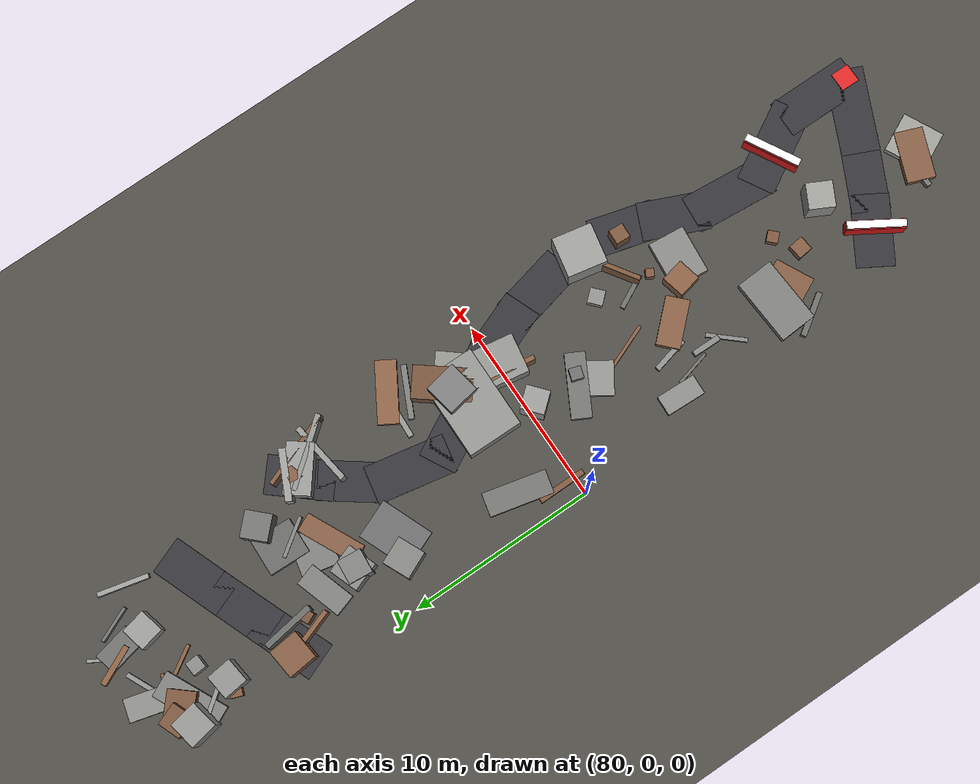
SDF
<sdf version="1.6">
 <world name="navitas_arena">
  <model name="ground_plane">
   <static>true</static>
   <link name="link">
    <collision name="collision">
     <geometry><plane><normal>0 0 1</normal><size>400 400</size></plane></geometry>
     <surface><friction><ode><mu>0.800</mu><mu2>0.800</mu2></ode></friction></surface>
    </collision>
    <visual name="visual">
     <cast_shadows>false</cast_shadows>
     <geometry><plane><normal>0 0 1</normal><size>400 400</size></plane></geometry>
     <material><ambient>0.300 0.290 0.270 1</ambient><diffuse>0.300 0.290 0.270 1</diffuse></material>
    </visual>
   </link>
  </model>
  <model name="road_zor_1_0">
   <static>true</static>
   <pose>88.355 -22.266 0.040 0 0 2.717</pose>
   <link name="link">
    <collision name="col"><geometry><box><size>4.465 2.000 0.020</size></box></geometry></collision>
    <visual name="vis">
     <geometry><box><size>4.465 2.000 0.020</size></box></geometry>
     <material><ambient>0.20 0.20 0.22 1</ambient><diffuse>0.20 0.20 0.22 1</diffuse></material>
    </visual>
   </link>
  </model>
  <model name="road_zor_1_1">
   <static>true</static>
   <pose>85.354 -20.856 0.040 0 0 2.686</pose>
   <link name="link">
    <collision name="col"><geometry><box><size>3.968 2.000 0.020</size></box></geometry></collision>
    <visual name="vis">
     <geometry><box><size>3.968 2.000 0.020</size></box></geometry>
     <material><ambient>0.20 0.20 0.22 1</ambient><diffuse>0.20 0.20 0.22 1</diffuse></material>
    </visual>
   </link>
  </model>
  <model name="road_zor_1_2">
   <static>true</static>
   <pose>82.742 -19.443 0.040 0 0 2.602</pose>
   <link name="link">
    <collision name="col"><geometry><box><size>3.777 2.000 0.020</size></box></geometry></collision>
    <visual name="vis">
     <geometry><box><size>3.777 2.000 0.020</size></box></geometry>
     <material><ambient>0.20 0.20 0.22 1</ambient><diffuse>0.20 0.20 0.22 1</diffuse></material>
    </visual>
   </link>
  </model>
  <model name="road_zor_1_18">
   <static>true</static>
   <pose>82.278 15.986 0.040 0 0 0.380</pose>
   <link name="link">
    <collision name="col"><geometry><box><size>3.693 2.000 0.020</size></box></geometry></collision>
    <visual name="vis">
     <geometry><box><size>3.693 2.000 0.020</size></box></geometry>
     <material><ambient>0.20 0.20 0.22 1</ambient><diffuse>0.20 0.20 0.22 1</diffuse></material>
    </visual>
   </link>
  </model>
  <model name="road_zor_1_19">
   <static>true</static>
   <pose>84.845 17.002 0.040 0 0 0.374</pose>
   <link name="link">
    <collision name="col"><geometry><box><size>3.627 2.000 0.020</size></box></geometry></collision>
    <visual name="vis">
     <geometry><box><size>3.627 2.000 0.020</size></box></geometry>
     <material><ambient>0.20 0.20 0.22 1</ambient><diffuse>0.20 0.20 0.22 1</diffuse></material>
    </visual>
   </link>
  </model>
  <model name="road_zor_1_20">
   <static>true</static>
   <pose>87.457 18.014 0.040 0 0 0.365</pose>
   <link name="link">
    <collision name="col"><geometry><box><size>3.776 2.000 0.020</size></box></geometry></collision>
    <visual name="vis">
     <geometry><box><size>3.776 2.000 0.020</size></box></geometry>
     <material><ambient>0.20 0.20 0.22 1</ambient><diffuse>0.20 0.20 0.22 1</diffuse></material>
    </visual>
   </link>
  </model>
  <model name="road_zor_2_0">
   <static>true</static>
   <pose>89.984 -21.250 0.040 0 0 1.568</pose>
   <link name="link">
    <collision name="col"><geometry><box><size>4.400 2.000 0.020</size></box></geometry></collision>
    <visual name="vis">
     <geometry><box><size>4.400 2.000 0.020</size></box></geometry>
     <material><ambient>0.20 0.20 0.22 1</ambient><diffuse>0.20 0.20 0.22 1</diffuse></material>
    </visual>
   </link>
  </model>
  <model name="road_zor_2_1">
   <static>true</static>
   <pose>89.083 -17.912 0.040 0 0 2.089</pose>
   <link name="link">
    <collision name="col"><geometry><box><size>4.556 2.000 0.020</size></box></geometry></collision>
    <visual name="vis">
     <geometry><box><size>4.556 2.000 0.020</size></box></geometry>
     <material><ambient>0.20 0.20 0.22 1</ambient><diffuse>0.20 0.20 0.22 1</diffuse></material>
    </visual>
   </link>
  </model>
  <model name="road_zor_2_2">
   <static>true</static>
   <pose>88.335 -14.588 0.040 0 0 1.480</pose>
   <link name="link">
    <collision name="col"><geometry><box><size>4.387 2.000 0.020</size></box></geometry></collision>
    <visual name="vis">
     <geometry><box><size>4.387 2.000 0.020</size></box></geometry>
     <material><ambient>0.20 0.20 0.22 1</ambient><diffuse>0.20 0.20 0.22 1</diffuse></material>
    </visual>
   </link>
  </model>
  <model name="road_zor_2_3">
   <static>true</static>
   <pose>89.023 -11.639 0.040 0 0 1.159</pose>
   <link name="link">
    <collision name="col"><geometry><box><size>3.547 2.000 0.020</size></box></geometry></collision>
    <visual name="vis">
     <geometry><box><size>3.547 2.000 0.020</size></box></geometry>
     <material><ambient>0.20 0.20 0.22 1</ambient><diffuse>0.20 0.20 0.22 1</diffuse></material>
    </visual>
   </link>
  </model>
  <model name="road_zor_2_4">
   <static>true</static>
   <pose>89.887 -9.213 0.040 0 0 1.302</pose>
   <link name="link">
    <collision name="col"><geometry><box><size>3.416 2.000 0.020</size></box></geometry></collision>
    <visual name="vis">
     <geometry><box><size>3.416 2.000 0.020</size></box></geometry>
     <material><ambient>0.20 0.20 0.22 1</ambient><diffuse>0.20 0.20 0.22 1</diffuse></material>
    </visual>
   </link>
  </model>
  <model name="road_zor_2_6">
   <static>true</static>
   <pose>89.777 -3.800 0.040 0 0 1.798</pose>
   <link name="link">
    <collision name="col"><geometry><box><size>3.774 2.000 0.020</size></box></geometry></collision>
    <visual name="vis">
     <geometry><box><size>3.774 2.000 0.020</size></box></geometry>
     <material><ambient>0.20 0.20 0.22 1</ambient><diffuse>0.20 0.20 0.22 1</diffuse></material>
    </visual>
   </link>
  </model>
  <model name="road_zor_2_7">
   <static>true</static>
   <pose>88.952 -1.117 0.040 0 0 1.943</pose>
   <link name="link">
    <collision name="col"><geometry><box><size>3.656 2.000 0.020</size></box></geometry></collision>
    <visual name="vis">
     <geometry><box><size>3.656 2.000 0.020</size></box></geometry>
     <material><ambient>0.20 0.20 0.22 1</ambient><diffuse>0.20 0.20 0.22 1</diffuse></material>
    </visual>
   </link>
  </model>
  <model name="road_zor_2_8">
   <static>true</static>
   <pose>87.653 1.333 0.040 0 0 2.170</pose>
   <link name="link">
    <collision name="col"><geometry><box><size>3.727 2.000 0.020</size></box></geometry></collision>
    <visual name="vis">
     <geometry><box><size>3.727 2.000 0.020</size></box></geometry>
     <material><ambient>0.20 0.20 0.22 1</ambient><diffuse>0.20 0.20 0.22 1</diffuse></material>
    </visual>
   </link>
  </model>
  <model name="road_zor_2_9">
   <static>true</static>
   <pose>86.221 3.667 0.040 0 0 2.068</pose>
   <link name="link">
    <collision name="col"><geometry><box><size>3.555 2.000 0.020</size></box></geometry></collision>
    <visual name="vis">
     <geometry><box><size>3.555 2.000 0.020</size></box></geometry>
     <material><ambient>0.20 0.20 0.22 1</ambient><diffuse>0.20 0.20 0.22 1</diffuse></material>
    </visual>
   </link>
  </model>
  <model name="road_zor_2_10">
   <static>true</static>
   <pose>85.906 6.453 0.040 0 0 1.377</pose>
   <link name="link">
    <collision name="col"><geometry><box><size>4.201 2.000 0.020</size></box></geometry></collision>
    <visual name="vis">
     <geometry><box><size>4.201 2.000 0.020</size></box></geometry>
     <material><ambient>0.20 0.20 0.22 1</ambient><diffuse>0.20 0.20 0.22 1</diffuse></material>
    </visual>
   </link>
  </model>
  <model name="road_zor_2_11">
   <static>true</static>
   <pose>87.006 9.124 0.040 0 0 0.931</pose>
   <link name="link">
    <collision name="col"><geometry><box><size>3.521 2.000 0.020</size></box></geometry></collision>
    <visual name="vis">
     <geometry><box><size>3.521 2.000 0.020</size></box></geometry>
     <material><ambient>0.20 0.20 0.22 1</ambient><diffuse>0.20 0.20 0.22 1</diffuse></material>
    </visual>
   </link>
  </model>
  <model name="road_zor_2_12">
   <static>true</static>
   <pose>88.625 11.153 0.040 0 0 0.864</pose>
   <link name="link">
    <collision name="col"><geometry><box><size>3.473 2.000 0.020</size></box></geometry></collision>
    <visual name="vis">
     <geometry><box><size>3.473 2.000 0.020</size></box></geometry>
     <material><ambient>0.20 0.20 0.22 1</ambient><diffuse>0.20 0.20 0.22 1</diffuse></material>
    </visual>
   </link>
  </model>
  <model name="bar_zor_1">
   <static>true</static>
   <pose>82.789 -19.500 0.500 0 0 4.156</pose>
   <link name="link">
    <collision name="col"><geometry><box><size>3.000 0.500 1.000</size></box></geometry></collision>
    <visual name="vis">
     <geometry><box><size>3.000 0.500 1.000</size></box></geometry>
     <material><ambient>0.85 0.10 0.10 1</ambient><diffuse>0.85 0.10 0.10 1</diffuse></material>
    </visual>
   </link>
  </model>
  <model name="bar_zor_1b">
   <static>true</static>
   <pose>82.789 -19.500 1.000 0 0 4.156</pose>
   <link name="link">
    <collision name="col"><geometry><box><size>3.000 0.400 0.300</size></box></geometry></collision>
    <visual name="vis">
     <geometry><box><size>3.000 0.400 0.300</size></box></geometry>
     <material><ambient>0.95 0.95 0.95 1</ambient><diffuse>0.95 0.95 0.95 1</diffuse></material>
    </visual>
   </link>
  </model>
  <model name="blk_zor_1_2_0">
   <static>true</static>
   <pose>81.534 16.074 0.765 0 0 0.105</pose>
   <link name="link">
    <collision name="col"><geometry><box><size>1.568 1.568 1.530</size></box></geometry></collision>
    <visual name="vis">
     <geometry><box><size>1.568 1.568 1.530</size></box></geometry>
     <material><ambient>0.50 0.35 0.25 1</ambient><diffuse>0.50 0.35 0.25 1</diffuse></material>
    </visual>
   </link>
  </model>
  <model name="blk_zor_1_2_1">
   <static>true</static>
   <pose>82.785 15.572 0.600 0 0 1.722</pose>
   <link name="link">
    <collision name="col"><geometry><box><size>2.753 0.307 1.200</size></box></geometry></collision>
    <visual name="vis">
     <geometry><box><size>2.753 0.307 1.200</size></box></geometry>
     <material><ambient>0.40 0.40 0.39 1</ambient><diffuse>0.40 0.40 0.39 1</diffuse></material>
    </visual>
   </link>
  </model>
  <model name="blk_zor_1_2_4">
   <static>true</static>
   <pose>82.732 14.569 0.600 0 0 0.431</pose>
   <link name="link">
    <collision name="col"><geometry><box><size>0.587 0.587 1.200</size></box></geometry></collision>
    <visual name="vis">
     <geometry><box><size>0.587 0.587 1.200</size></box></geometry>
     <material><ambient>0.45 0.32 0.23 1</ambient><diffuse>0.45 0.32 0.23 1</diffuse></material>
    </visual>
   </link>
  </model>
  <model name="blk_zor_1_2_5">
   <static>true</static>
   <pose>81.872 15.113 0.600 0 0 1.910</pose>
   <link name="link">
    <collision name="col"><geometry><box><size>3.104 0.239 1.200</size></box></geometry></collision>
    <visual name="vis">
     <geometry><box><size>3.104 0.239 1.200</size></box></geometry>
     <material><ambient>0.52 0.37 0.26 1</ambient><diffuse>0.52 0.37 0.26 1</diffuse></material>
    </visual>
   </link>
  </model>
  <model name="bar_zor_2">
   <static>true</static>
   <pose>88.810 -17.469 0.500 0 0 3.647</pose>
   <link name="link">
    <collision name="col"><geometry><box><size>3.000 0.500 1.000</size></box></geometry></collision>
    <visual name="vis">
     <geometry><box><size>3.000 0.500 1.000</size></box></geometry>
     <material><ambient>0.85 0.10 0.10 1</ambient><diffuse>0.85 0.10 0.10 1</diffuse></material>
    </visual>
   </link>
  </model>
  <model name="bar_zor_2b">
   <static>true</static>
   <pose>88.810 -17.469 1.000 0 0 3.647</pose>
   <link name="link">
    <collision name="col"><geometry><box><size>3.000 0.400 0.300</size></box></geometry></collision>
    <visual name="vis">
     <geometry><box><size>3.000 0.400 0.300</size></box></geometry>
     <material><ambient>0.95 0.95 0.95 1</ambient><diffuse>0.95 0.95 0.95 1</diffuse></material>
    </visual>
   </link>
  </model>
  <model name="blk_zor_2_0_1">
   <static>true</static>
   <pose>89.958 -6.457 0.905 0 0 1.372</pose>
   <link name="link">
    <collision name="col"><geometry><box><size>2.103 2.103 1.810</size></box></geometry></collision>
    <visual name="vis">
     <geometry><box><size>2.103 2.103 1.810</size></box></geometry>
     <material><ambient>0.60 0.60 0.59 1</ambient><diffuse>0.60 0.60 0.59 1</diffuse></material>
    </visual>
   </link>
  </model>
  <model name="blk_zor_2_0_3">
   <static>true</static>
   <pose>88.860 -7.112 0.600 0 0 0.584</pose>
   <link name="link">
    <collision name="col"><geometry><box><size>3.984 0.230 1.200</size></box></geometry></collision>
    <visual name="vis">
     <geometry><box><size>3.984 0.230 1.200</size></box></geometry>
     <material><ambient>0.48 0.34 0.24 1</ambient><diffuse>0.48 0.34 0.24 1</diffuse></material>
    </visual>
   </link>
  </model>
  <model name="blk_zor_2_0_4">
   <static>true</static>
   <pose>89.624 -8.655 0.600 0 0 1.518</pose>
   <link name="link">
    <collision name="col"><geometry><box><size>0.777 0.777 1.200</size></box></geometry></collision>
    <visual name="vis">
     <geometry><box><size>0.777 0.777 1.200</size></box></geometry>
     <material><ambient>0.48 0.34 0.24 1</ambient><diffuse>0.48 0.34 0.24 1</diffuse></material>
    </visual>
   </link>
  </model>
  <model name="blk_zor_2_1_0">
   <static>true</static>
   <pose>86.831 2.198 0.600 0 0 3.131</pose>
   <link name="link">
    <collision name="col"><geometry><box><size>4.416 2.919 1.200</size></box></geometry></collision>
    <visual name="vis">
     <geometry><box><size>4.416 2.919 1.200</size></box></geometry>
     <material><ambient>0.56 0.56 0.55 1</ambient><diffuse>0.56 0.56 0.55 1</diffuse></material>
    </visual>
   </link>
  </model>
  <model name="blk_zor_2_1_1">
   <static>true</static>
   <pose>88.861 2.069 0.600 0 0 0.873</pose>
   <link name="link">
    <collision name="col"><geometry><box><size>1.511 1.511 1.200</size></box></geometry></collision>
    <visual name="vis">
     <geometry><box><size>1.511 1.511 1.200</size></box></geometry>
     <material><ambient>0.56 0.56 0.54 1</ambient><diffuse>0.56 0.56 0.54 1</diffuse></material>
    </visual>
   </link>
  </model>
  <model name="blk_zor_2_1_2">
   <static>true</static>
   <pose>87.805 2.615 0.928 0 0 1.751</pose>
   <link name="link">
    <collision name="col"><geometry><box><size>1.708 1.708 1.855</size></box></geometry></collision>
    <visual name="vis">
     <geometry><box><size>1.708 1.708 1.855</size></box></geometry>
     <material><ambient>0.48 0.48 0.48 1</ambient><diffuse>0.48 0.48 0.48 1</diffuse></material>
    </visual>
   </link>
  </model>
  <model name="blk_zor_2_1_3">
   <static>true</static>
   <pose>88.386 2.817 0.600 0 0 0.906</pose>
   <link name="link">
    <collision name="col"><geometry><box><size>3.028 1.689 1.200</size></box></geometry></collision>
    <visual name="vis">
     <geometry><box><size>3.028 1.689 1.200</size></box></geometry>
     <material><ambient>0.45 0.32 0.23 1</ambient><diffuse>0.45 0.32 0.23 1</diffuse></material>
    </visual>
   </link>
  </model>
  <model name="blk_zor_2_1_4">
   <static>true</static>
   <pose>87.727 0.151 0.600 0 0 1.405</pose>
   <link name="link">
    <collision name="col"><geometry><box><size>2.795 2.076 1.200</size></box></geometry></collision>
    <visual name="vis">
     <geometry><box><size>2.795 2.076 1.200</size></box></geometry>
     <material><ambient>0.56 0.56 0.55 1</ambient><diffuse>0.56 0.56 0.55 1</diffuse></material>
    </visual>
   </link>
  </model>
  <model name="blk_zor_2_1_5">
   <static>true</static>
   <pose>87.114 -0.024 0.600 0 0 1.452</pose>
   <link name="link">
    <collision name="col"><geometry><box><size>3.294 0.241 1.200</size></box></geometry></collision>
    <visual name="vis">
     <geometry><box><size>3.294 0.241 1.200</size></box></geometry>
     <material><ambient>0.52 0.37 0.26 1</ambient><diffuse>0.52 0.37 0.26 1</diffuse></material>
    </visual>
   </link>
  </model>
  <model name="blk_zor_2_2_0">
   <static>true</static>
   <pose>89.357 10.189 0.600 0 0 2.244</pose>
   <link name="link">
    <collision name="col"><geometry><box><size>3.918 0.281 1.200</size></box></geometry></collision>
    <visual name="vis">
     <geometry><box><size>3.918 0.281 1.200</size></box></geometry>
     <material><ambient>0.56 0.56 0.55 1</ambient><diffuse>0.56 0.56 0.55 1</diffuse></material>
    </visual>
   </link>
  </model>
  <model name="blk_zor_2_2_1">
   <static>true</static>
   <pose>88.886 10.933 0.600 0 0 2.485</pose>
   <link name="link">
    <collision name="col"><geometry><box><size>2.651 1.401 1.200</size></box></geometry></collision>
    <visual name="vis">
     <geometry><box><size>2.651 1.401 1.200</size></box></geometry>
     <material><ambient>0.59 0.59 0.58 1</ambient><diffuse>0.59 0.59 0.58 1</diffuse></material>
    </visual>
   </link>
  </model>
  <model name="blk_zor_2_2_2">
   <static>true</static>
   <pose>89.723 10.577 0.600 0 0 1.938</pose>
   <link name="link">
    <collision name="col"><geometry><box><size>4.013 0.212 1.200</size></box></geometry></collision>
    <visual name="vis">
     <geometry><box><size>4.013 0.212 1.200</size></box></geometry>
     <material><ambient>0.49 0.35 0.25 1</ambient><diffuse>0.49 0.35 0.25 1</diffuse></material>
    </visual>
   </link>
  </model>
  <model name="blk_zor_2_2_3">
   <static>true</static>
   <pose>88.991 11.640 0.600 0 0 2.694</pose>
   <link name="link">
    <collision name="col"><geometry><box><size>2.640 0.362 1.200</size></box></geometry></collision>
    <visual name="vis">
     <geometry><box><size>2.640 0.362 1.200</size></box></geometry>
     <material><ambient>0.61 0.61 0.60 1</ambient><diffuse>0.61 0.61 0.60 1</diffuse></material>
    </visual>
   </link>
  </model>
  <model name="blk_zor_2_2_4">
   <static>true</static>
   <pose>88.915 9.645 0.600 0 0 0.136</pose>
   <link name="link">
    <collision name="col"><geometry><box><size>3.320 0.303 1.200</size></box></geometry></collision>
    <visual name="vis">
     <geometry><box><size>3.320 0.303 1.200</size></box></geometry>
     <material><ambient>0.58 0.58 0.57 1</ambient><diffuse>0.58 0.58 0.57 1</diffuse></material>
    </visual>
   </link>
  </model>
  <model name="blk_zor_2_2_5">
   <static>true</static>
   <pose>88.836 11.244 0.600 0 0 3.020</pose>
   <link name="link">
    <collision name="col"><geometry><box><size>0.739 0.739 1.200</size></box></geometry></collision>
    <visual name="vis">
     <geometry><box><size>0.739 0.739 1.200</size></box></geometry>
     <material><ambient>0.51 0.36 0.26 1</ambient><diffuse>0.51 0.36 0.26 1</diffuse></material>
    </visual>
   </link>
  </model>
  <model name="deb_zor_8">
   <static>true</static>
   <pose>83.299 -7.352 0.157 0 0 1.815</pose>
   <link name="link">
    <collision name="col"><geometry><box><size>1.921 0.272 0.314</size></box></geometry></collision>
    <visual name="vis">
     <geometry><box><size>1.921 0.272 0.314</size></box></geometry>
     <material><ambient>0.54 0.54 0.53 1</ambient><diffuse>0.54 0.54 0.53 1</diffuse></material>
    </visual>
   </link>
  </model>
  <model name="deb_zor_13">
   <static>true</static>
   <pose>82.065 22.336 0.806 0 0 0.371</pose>
   <link name="link">
    <collision name="col"><geometry><box><size>1.214 1.214 1.613</size></box></geometry></collision>
    <visual name="vis">
     <geometry><box><size>1.214 1.214 1.613</size></box></geometry>
     <material><ambient>0.47 0.33 0.24 1</ambient><diffuse>0.47 0.33 0.24 1</diffuse></material>
    </visual>
   </link>
  </model>
  <model name="deb_zor_21">
   <static>true</static>
   <pose>86.591 22.984 0.146 0 0 1.790</pose>
   <link name="link">
    <collision name="col"><geometry><box><size>2.003 1.185 0.292</size></box></geometry></collision>
    <visual name="vis">
     <geometry><box><size>2.003 1.185 0.292</size></box></geometry>
     <material><ambient>0.42 0.42 0.41 1</ambient><diffuse>0.42 0.42 0.41 1</diffuse></material>
    </visual>
   </link>
  </model>
  <model name="deb_zor_27">
   <static>true</static>
   <pose>83.814 20.283 0.382 0 0 1.636</pose>
   <link name="link">
    <collision name="col"><geometry><box><size>0.714 0.714 0.765</size></box></geometry></collision>
    <visual name="vis">
     <geometry><box><size>0.714 0.714 0.765</size></box></geometry>
     <material><ambient>0.52 0.52 0.51 1</ambient><diffuse>0.52 0.52 0.51 1</diffuse></material>
    </visual>
   </link>
  </model>
  <model name="deb_zor_41">
   <static>true</static>
   <pose>83.317 13.174 0.221 0 0 0.307</pose>
   <link name="link">
    <collision name="col"><geometry><box><size>2.510 1.187 0.442</size></box></geometry></collision>
    <visual name="vis">
     <geometry><box><size>2.510 1.187 0.442</size></box></geometry>
     <material><ambient>0.48 0.48 0.47 1</ambient><diffuse>0.48 0.48 0.47 1</diffuse></material>
    </visual>
   </link>
  </model>
  <model name="deb_zor_42">
   <static>true</static>
   <pose>83.306 11.291 0.933 0 0 1.484</pose>
   <link name="link">
    <collision name="col"><geometry><box><size>1.263 1.263 1.866</size></box></geometry></collision>
    <visual name="vis">
     <geometry><box><size>1.263 1.263 1.866</size></box></geometry>
     <material><ambient>0.49 0.49 0.48 1</ambient><diffuse>0.49 0.49 0.48 1</diffuse></material>
    </visual>
   </link>
  </model>
  <model name="deb_zor_55">
   <static>true</static>
   <pose>82.510 -13.257 0.235 0 0 0.060</pose>
   <link name="link">
    <collision name="col"><geometry><box><size>3.521 1.997 0.470</size></box></geometry></collision>
    <visual name="vis">
     <geometry><box><size>3.521 1.997 0.470</size></box></geometry>
     <material><ambient>0.48 0.48 0.47 1</ambient><diffuse>0.48 0.48 0.47 1</diffuse></material>
    </visual>
   </link>
  </model>
  <model name="deb_zor_57">
   <static>true</static>
   <pose>82.362 9.134 0.712 0 0 0.421</pose>
   <link name="link">
    <collision name="col"><geometry><box><size>1.478 1.478 1.424</size></box></geometry></collision>
    <visual name="vis">
     <geometry><box><size>1.478 1.478 1.424</size></box></geometry>
     <material><ambient>0.50 0.50 0.49 1</ambient><diffuse>0.50 0.50 0.49 1</diffuse></material>
    </visual>
   </link>
  </model>
  <model name="deb_zor_63">
   <static>true</static>
   <pose>82.094 20.366 0.205 0 0 2.224</pose>
   <link name="link">
    <collision name="col"><geometry><box><size>1.797 0.212 0.409</size></box></geometry></collision>
    <visual name="vis">
     <geometry><box><size>1.797 0.212 0.409</size></box></geometry>
     <material><ambient>0.56 0.56 0.55 1</ambient><diffuse>0.56 0.56 0.55 1</diffuse></material>
    </visual>
   </link>
  </model>
  <model name="deb_zor_71">
   <static>true</static>
   <pose>89.714 5.273 0.191 0 0 2.602</pose>
   <link name="link">
    <collision name="col"><geometry><box><size>3.224 1.093 0.382</size></box></geometry></collision>
    <visual name="vis">
     <geometry><box><size>3.224 1.093 0.382</size></box></geometry>
     <material><ambient>0.54 0.38 0.27 1</ambient><diffuse>0.54 0.38 0.27 1</diffuse></material>
    </visual>
   </link>
  </model>
  <model name="deb_zor_74">
   <static>true</static>
   <pose>89.099 21.162 0.181 0 0 1.336</pose>
   <link name="link">
    <collision name="col"><geometry><box><size>2.662 0.239 0.361</size></box></geometry></collision>
    <visual name="vis">
     <geometry><box><size>2.662 0.239 0.361</size></box></geometry>
     <material><ambient>0.60 0.60 0.59 1</ambient><diffuse>0.60 0.60 0.59 1</diffuse></material>
    </visual>
   </link>
  </model>
  <model name="deb_zor_87">
   <static>true</static>
   <pose>85.052 -0.422 0.948 0 0 0.702</pose>
   <link name="link">
    <collision name="col"><geometry><box><size>1.231 1.231 1.896</size></box></geometry></collision>
    <visual name="vis">
     <geometry><box><size>1.231 1.231 1.896</size></box></geometry>
     <material><ambient>0.59 0.59 0.58 1</ambient><diffuse>0.59 0.59 0.58 1</diffuse></material>
    </visual>
   </link>
  </model>
  <model name="deb_zor_88">
   <static>true</static>
   <pose>87.238 -8.873 0.292 0 0 1.086</pose>
   <link name="link">
    <collision name="col"><geometry><box><size>0.434 0.434 0.583</size></box></geometry></collision>
    <visual name="vis">
     <geometry><box><size>0.434 0.434 0.583</size></box></geometry>
     <material><ambient>0.49 0.34 0.24 1</ambient><diffuse>0.49 0.34 0.24 1</diffuse></material>
    </visual>
   </link>
  </model>
  <model name="deb_zor_101">
   <static>true</static>
   <pose>83.553 22.991 0.176 0 0 1.307</pose>
   <link name="link">
    <collision name="col"><geometry><box><size>2.696 1.195 0.352</size></box></geometry></collision>
    <visual name="vis">
     <geometry><box><size>2.696 1.195 0.352</size></box></geometry>
     <material><ambient>0.53 0.53 0.52 1</ambient><diffuse>0.53 0.53 0.52 1</diffuse></material>
    </visual>
   </link>
  </model>
  <model name="deb_zor_114">
   <static>true</static>
   <pose>84.024 -15.831 0.265 0 0 0.117</pose>
   <link name="link">
    <collision name="col"><geometry><box><size>0.786 0.786 0.531</size></box></geometry></collision>
    <visual name="vis">
     <geometry><box><size>0.786 0.786 0.531</size></box></geometry>
     <material><ambient>0.50 0.35 0.25 1</ambient><diffuse>0.50 0.35 0.25 1</diffuse></material>
    </visual>
   </link>
  </model>
  <model name="deb_zor_117">
   <static>true</static>
   <pose>85.266 -15.023 0.237 0 0 0.774</pose>
   <link name="link">
    <collision name="col"><geometry><box><size>0.594 0.594 0.473</size></box></geometry></collision>
    <visual name="vis">
     <geometry><box><size>0.594 0.594 0.473</size></box></geometry>
     <material><ambient>0.47 0.33 0.24 1</ambient><diffuse>0.47 0.33 0.24 1</diffuse></material>
    </visual>
   </link>
  </model>
  <model name="deb_zor_120">
   <static>true</static>
   <pose>83.724 -23.061 0.190 0 0 0.058</pose>
   <link name="link">
    <collision name="col"><geometry><box><size>1.524 0.268 0.381</size></box></geometry></collision>
    <visual name="vis">
     <geometry><box><size>1.524 0.268 0.381</size></box></geometry>
     <material><ambient>0.44 0.44 0.43 1</ambient><diffuse>0.44 0.44 0.43 1</diffuse></material>
    </visual>
   </link>
  </model>
  <model name="deb_zor_127">
   <static>true</static>
   <pose>86.075 -9.913 0.497 0 0 0.222</pose>
   <link name="link">
    <collision name="col"><geometry><box><size>1.246 1.246 0.995</size></box></geometry></collision>
    <visual name="vis">
     <geometry><box><size>1.246 1.246 0.995</size></box></geometry>
     <material><ambient>0.53 0.37 0.26 1</ambient><diffuse>0.53 0.37 0.26 1</diffuse></material>
    </visual>
   </link>
  </model>
  <model name="deb_zor_130">
   <static>true</static>
   <pose>80.972 0.798 0.173 0 0 1.576</pose>
   <link name="link">
    <collision name="col"><geometry><box><size>2.553 0.299 0.345</size></box></geometry></collision>
    <visual name="vis">
     <geometry><box><size>2.553 0.299 0.345</size></box></geometry>
     <material><ambient>0.48 0.33 0.24 1</ambient><diffuse>0.48 0.33 0.24 1</diffuse></material>
    </visual>
   </link>
  </model>
  <model name="deb_zor_133">
   <static>true</static>
   <pose>84.849 -5.734 0.121 0 0 1.950</pose>
   <link name="link">
    <collision name="col"><geometry><box><size>2.649 0.167 0.242</size></box></geometry></collision>
    <visual name="vis">
     <geometry><box><size>2.649 0.167 0.242</size></box></geometry>
     <material><ambient>0.52 0.36 0.26 1</ambient><diffuse>0.52 0.36 0.26 1</diffuse></material>
    </visual>
   </link>
  </model>
  <model name="deb_zor_135">
   <static>true</static>
   <pose>82.430 -10.197 0.099 0 0 0.840</pose>
   <link name="link">
    <collision name="col"><geometry><box><size>2.109 0.212 0.199</size></box></geometry></collision>
    <visual name="vis">
     <geometry><box><size>2.109 0.212 0.199</size></box></geometry>
     <material><ambient>0.52 0.52 0.51 1</ambient><diffuse>0.52 0.52 0.51 1</diffuse></material>
    </visual>
   </link>
  </model>
  <model name="deb_zor_144">
   <static>true</static>
   <pose>85.117 -2.921 0.419 0 0 1.263</pose>
   <link name="link">
    <collision name="col"><geometry><box><size>0.632 0.632 0.837</size></box></geometry></collision>
    <visual name="vis">
     <geometry><box><size>0.632 0.632 0.837</size></box></geometry>
     <material><ambient>0.42 0.42 0.41 1</ambient><diffuse>0.42 0.42 0.41 1</diffuse></material>
    </visual>
   </link>
  </model>
  <model name="deb_zor_148">
   <static>true</static>
   <pose>86.315 13.820 0.215 0 0 1.536</pose>
   <link name="link">
    <collision name="col"><geometry><box><size>2.188 1.913 0.429</size></box></geometry></collision>
    <visual name="vis">
     <geometry><box><size>2.188 1.913 0.429</size></box></geometry>
     <material><ambient>0.40 0.40 0.39 1</ambient><diffuse>0.40 0.40 0.39 1</diffuse></material>
    </visual>
   </link>
  </model>
  <model name="deb_zor_154">
   <static>true</static>
   <pose>81.400 21.741 0.957 0 0 1.757</pose>
   <link name="link">
    <collision name="col"><geometry><box><size>1.493 1.493 1.914</size></box></geometry></collision>
    <visual name="vis">
     <geometry><box><size>1.493 1.493 1.914</size></box></geometry>
     <material><ambient>0.56 0.56 0.55 1</ambient><diffuse>0.56 0.56 0.55 1</diffuse></material>
    </visual>
   </link>
  </model>
  <model name="deb_zor_158">
   <static>true</static>
   <pose>85.251 12.573 0.142 0 0 2.930</pose>
   <link name="link">
    <collision name="col"><geometry><box><size>2.094 1.987 0.283</size></box></geometry></collision>
    <visual name="vis">
     <geometry><box><size>2.094 1.987 0.283</size></box></geometry>
     <material><ambient>0.48 0.48 0.47 1</ambient><diffuse>0.48 0.48 0.47 1</diffuse></material>
    </visual>
   </link>
  </model>
  <model name="deb_zor_159">
   <static>true</static>
   <pose>83.627 8.850 0.125 0 0 0.383</pose>
   <link name="link">
    <collision name="col"><geometry><box><size>2.871 2.118 0.250</size></box></geometry></collision>
    <visual name="vis">
     <geometry><box><size>2.871 2.118 0.250</size></box></geometry>
     <material><ambient>0.41 0.41 0.41 1</ambient><diffuse>0.41 0.41 0.41 1</diffuse></material>
    </visual>
   </link>
  </model>
  <model name="deb_zor_169">
   <static>true</static>
   <pose>82.742 -13.906 0.186 0 0 2.032</pose>
   <link name="link">
    <collision name="col"><geometry><box><size>2.453 2.099 0.372</size></box></geometry></collision>
    <visual name="vis">
     <geometry><box><size>2.453 2.099 0.372</size></box></geometry>
     <material><ambient>0.50 0.35 0.25 1</ambient><diffuse>0.50 0.35 0.25 1</diffuse></material>
    </visual>
   </link>
  </model>
  <model name="deb_zor_177">
   <static>true</static>
   <pose>80.982 -14.340 0.170 0 0 2.166</pose>
   <link name="link">
    <collision name="col"><geometry><box><size>2.366 0.292 0.340</size></box></geometry></collision>
    <visual name="vis">
     <geometry><box><size>2.366 0.292 0.340</size></box></geometry>
     <material><ambient>0.41 0.41 0.40 1</ambient><diffuse>0.41 0.41 0.40 1</diffuse></material>
    </visual>
   </link>
  </model>
  <model name="deb_zor_179">
   <static>true</static>
   <pose>82.651 -9.094 0.184 0 0 1.554</pose>
   <link name="link">
    <collision name="col"><geometry><box><size>1.503 0.290 0.369</size></box></geometry></collision>
    <visual name="vis">
     <geometry><box><size>1.503 0.290 0.369</size></box></geometry>
     <material><ambient>0.52 0.52 0.51 1</ambient><diffuse>0.52 0.52 0.51 1</diffuse></material>
    </visual>
   </link>
  </model>
  <model name="deb_zor_185">
   <static>true</static>
   <pose>86.625 23.947 0.106 0 0 1.014</pose>
   <link name="link">
    <collision name="col"><geometry><box><size>1.519 0.166 0.212</size></box></geometry></collision>
    <visual name="vis">
     <geometry><box><size>1.519 0.166 0.212</size></box></geometry>
     <material><ambient>0.59 0.59 0.57 1</ambient><diffuse>0.59 0.59 0.57 1</diffuse></material>
    </visual>
   </link>
  </model>
  <model name="deb_zor_190">
   <static>true</static>
   <pose>82.558 21.509 0.177 0 0 0.447</pose>
   <link name="link">
    <collision name="col"><geometry><box><size>3.441 1.393 0.354</size></box></geometry></collision>
    <visual name="vis">
     <geometry><box><size>3.441 1.393 0.354</size></box></geometry>
     <material><ambient>0.48 0.48 0.47 1</ambient><diffuse>0.48 0.48 0.47 1</diffuse></material>
    </visual>
   </link>
  </model>
  <model name="deb_zor_192">
   <static>true</static>
   <pose>87.040 -7.613 0.093 0 0 2.047</pose>
   <link name="link">
    <collision name="col"><geometry><box><size>1.898 0.250 0.185</size></box></geometry></collision>
    <visual name="vis">
     <geometry><box><size>1.898 0.250 0.185</size></box></geometry>
     <material><ambient>0.41 0.41 0.40 1</ambient><diffuse>0.41 0.41 0.40 1</diffuse></material>
    </visual>
   </link>
  </model>
  <model name="deb_zor_196">
   <static>true</static>
   <pose>86.368 13.069 0.232 0 0 2.183</pose>
   <link name="link">
    <collision name="col"><geometry><box><size>2.147 0.187 0.464</size></box></geometry></collision>
    <visual name="vis">
     <geometry><box><size>2.147 0.187 0.464</size></box></geometry>
     <material><ambient>0.50 0.50 0.49 1</ambient><diffuse>0.50 0.50 0.49 1</diffuse></material>
    </visual>
   </link>
  </model>
  <model name="deb_zor_207">
   <static>true</static>
   <pose>85.244 11.541 0.209 0 0 0.447</pose>
   <link name="link">
    <collision name="col"><geometry><box><size>3.199 1.023 0.417</size></box></geometry></collision>
    <visual name="vis">
     <geometry><box><size>3.199 1.023 0.417</size></box></geometry>
     <material><ambient>0.51 0.36 0.26 1</ambient><diffuse>0.51 0.36 0.26 1</diffuse></material>
    </visual>
   </link>
  </model>
  <model name="deb_zor_226">
   <static>true</static>
   <pose>88.104 5.471 0.156 0 0 3.093</pose>
   <link name="link">
    <collision name="col"><geometry><box><size>1.808 0.284 0.312</size></box></geometry></collision>
    <visual name="vis">
     <geometry><box><size>1.808 0.284 0.312</size></box></geometry>
     <material><ambient>0.56 0.56 0.55 1</ambient><diffuse>0.56 0.56 0.55 1</diffuse></material>
    </visual>
   </link>
  </model>
  <model name="deb_zor_229">
   <static>true</static>
   <pose>84.483 20.773 0.112 0 0 2.130</pose>
   <link name="link">
    <collision name="col"><geometry><box><size>1.592 0.188 0.223</size></box></geometry></collision>
    <visual name="vis">
     <geometry><box><size>1.592 0.188 0.223</size></box></geometry>
     <material><ambient>0.51 0.36 0.26 1</ambient><diffuse>0.51 0.36 0.26 1</diffuse></material>
    </visual>
   </link>
  </model>
  <model name="deb_zor_237">
   <static>true</static>
   <pose>82.348 19.291 0.735 0 0 1.690</pose>
   <link name="link">
    <collision name="col"><geometry><box><size>1.333 1.333 1.469</size></box></geometry></collision>
    <visual name="vis">
     <geometry><box><size>1.333 1.333 1.469</size></box></geometry>
     <material><ambient>0.55 0.55 0.54 1</ambient><diffuse>0.55 0.55 0.54 1</diffuse></material>
    </visual>
   </link>
  </model>
  <model name="deb_zor_238">
   <static>true</static>
   <pose>89.138 4.434 0.222 0 0 2.699</pose>
   <link name="link">
    <collision name="col"><geometry><box><size>2.750 0.297 0.445</size></box></geometry></collision>
    <visual name="vis">
     <geometry><box><size>2.750 0.297 0.445</size></box></geometry>
     <material><ambient>0.47 0.47 0.46 1</ambient><diffuse>0.47 0.47 0.46 1</diffuse></material>
    </visual>
   </link>
  </model>
  <model name="deb_zor_242">
   <static>true</static>
   <pose>84.544 -8.389 0.237 0 0 2.325</pose>
   <link name="link">
    <collision name="col"><geometry><box><size>2.547 1.237 0.473</size></box></geometry></collision>
    <visual name="vis">
     <geometry><box><size>2.547 1.237 0.473</size></box></geometry>
     <material><ambient>0.52 0.37 0.26 1</ambient><diffuse>0.52 0.37 0.26 1</diffuse></material>
    </visual>
   </link>
  </model>
  <model name="deb_zor_244">
   <static>true</static>
   <pose>85.507 -17.927 0.813 0 0 1.091</pose>
   <link name="link">
    <collision name="col"><geometry><box><size>1.370 1.370 1.627</size></box></geometry></collision>
    <visual name="vis">
     <geometry><box><size>1.370 1.370 1.627</size></box></geometry>
     <material><ambient>0.61 0.61 0.59 1</ambient><diffuse>0.61 0.61 0.59 1</diffuse></material>
    </visual>
   </link>
  </model>
  <model name="deb_zor_245">
   <static>true</static>
   <pose>82.622 21.887 0.527 0 0 0.857</pose>
   <link name="link">
    <collision name="col"><geometry><box><size>1.439 1.439 1.053</size></box></geometry></collision>
    <visual name="vis">
     <geometry><box><size>1.439 1.439 1.053</size></box></geometry>
     <material><ambient>0.47 0.33 0.24 1</ambient><diffuse>0.47 0.33 0.24 1</diffuse></material>
    </visual>
   </link>
  </model>
  <model name="deb_zor_247">
   <static>true</static>
   <pose>87.764 -5.995 0.246 0 0 0.729</pose>
   <link name="link">
    <collision name="col"><geometry><box><size>0.789 0.789 0.492</size></box></geometry></collision>
    <visual name="vis">
     <geometry><box><size>0.789 0.789 0.492</size></box></geometry>
     <material><ambient>0.55 0.55 0.54 1</ambient><diffuse>0.55 0.55 0.54 1</diffuse></material>
    </visual>
   </link>
  </model>
  <model name="deb_zor_258">
   <static>true</static>
   <pose>87.092 -10.519 0.223 0 0 3.044</pose>
   <link name="link">
    <collision name="col"><geometry><box><size>2.550 1.936 0.446</size></box></geometry></collision>
    <visual name="vis">
     <geometry><box><size>2.550 1.936 0.446</size></box></geometry>
     <material><ambient>0.52 0.52 0.51 1</ambient><diffuse>0.52 0.52 0.51 1</diffuse></material>
    </visual>
   </link>
  </model>
  <model name="deb_zor_268">
   <static>true</static>
   <pose>84.438 22.905 0.091 0 0 0.434</pose>
   <link name="link">
    <collision name="col"><geometry><box><size>2.078 0.245 0.182</size></box></geometry></collision>
    <visual name="vis">
     <geometry><box><size>2.078 0.245 0.182</size></box></geometry>
     <material><ambient>0.55 0.55 0.54 1</ambient><diffuse>0.55 0.55 0.54 1</diffuse></material>
    </visual>
   </link>
  </model>
  <model name="deb_zor_280">
   <static>true</static>
   <pose>84.472 -3.575 0.171 0 0 0.989</pose>
   <link name="link">
    <collision name="col"><geometry><box><size>1.976 1.766 0.342</size></box></geometry></collision>
    <visual name="vis">
     <geometry><box><size>1.976 1.766 0.342</size></box></geometry>
     <material><ambient>0.56 0.56 0.55 1</ambient><diffuse>0.56 0.56 0.55 1</diffuse></material>
    </visual>
   </link>
  </model>
  <model name="deb_zor_281">
   <static>true</static>
   <pose>82.115 -7.901 0.122 0 0 1.823</pose>
   <link name="link">
    <collision name="col"><geometry><box><size>1.951 0.154 0.244</size></box></geometry></collision>
    <visual name="vis">
     <geometry><box><size>1.951 0.154 0.244</size></box></geometry>
     <material><ambient>0.41 0.41 0.40 1</ambient><diffuse>0.41 0.41 0.40 1</diffuse></material>
    </visual>
   </link>
  </model>
  <model name="deb_zor_282">
   <static>true</static>
   <pose>84.623 -2.711 0.184 0 0 2.646</pose>
   <link name="link">
    <collision name="col"><geometry><box><size>3.345 1.062 0.368</size></box></geometry></collision>
    <visual name="vis">
     <geometry><box><size>3.345 1.062 0.368</size></box></geometry>
     <material><ambient>0.44 0.44 0.43 1</ambient><diffuse>0.44 0.44 0.43 1</diffuse></material>
    </visual>
   </link>
  </model>
  <model name="deb_zor_283">
   <static>true</static>
   <pose>83.373 22.176 0.165 0 0 2.894</pose>
   <link name="link">
    <collision name="col"><geometry><box><size>2.207 0.209 0.330</size></box></geometry></collision>
    <visual name="vis">
     <geometry><box><size>2.207 0.209 0.330</size></box></geometry>
     <material><ambient>0.48 0.34 0.24 1</ambient><diffuse>0.48 0.34 0.24 1</diffuse></material>
    </visual>
   </link>
  </model>
  <model name="deb_zor_286">
   <static>true</static>
   <pose>87.652 14.133 0.816 0 0 2.362</pose>
   <link name="link">
    <collision name="col"><geometry><box><size>1.384 1.384 1.633</size></box></geometry></collision>
    <visual name="vis">
     <geometry><box><size>1.384 1.384 1.633</size></box></geometry>
     <material><ambient>0.44 0.44 0.43 1</ambient><diffuse>0.44 0.44 0.43 1</diffuse></material>
    </visual>
   </link>
  </model>
  <model name="deb_zor_289">
   <static>true</static>
   <pose>85.210 -23.780 0.207 0 0 0.460</pose>
   <link name="link">
    <collision name="col"><geometry><box><size>2.210 2.136 0.415</size></box></geometry></collision>
    <visual name="vis">
     <geometry><box><size>2.210 2.136 0.415</size></box></geometry>
     <material><ambient>0.60 0.60 0.58 1</ambient><diffuse>0.60 0.60 0.58 1</diffuse></material>
    </visual>
   </link>
  </model>
  <model name="deb_zor_295">
   <static>true</static>
   <pose>86.638 21.450 0.517 0 0 1.791</pose>
   <link name="link">
    <collision name="col"><geometry><box><size>1.323 1.323 1.034</size></box></geometry></collision>
    <visual name="vis">
     <geometry><box><size>1.323 1.323 1.034</size></box></geometry>
     <material><ambient>0.59 0.59 0.58 1</ambient><diffuse>0.59 0.59 0.58 1</diffuse></material>
    </visual>
   </link>
  </model>
  <model name="deb_zor_298">
   <static>true</static>
   <pose>84.647 -23.394 0.221 0 0 2.775</pose>
   <link name="link">
    <collision name="col"><geometry><box><size>2.670 1.488 0.441</size></box></geometry></collision>
    <visual name="vis">
     <geometry><box><size>2.670 1.488 0.441</size></box></geometry>
     <material><ambient>0.51 0.36 0.26 1</ambient><diffuse>0.51 0.36 0.26 1</diffuse></material>
    </visual>
   </link>
  </model>
  <model name="deb_zor_303">
   <static>true</static>
   <pose>83.340 11.418 0.780 0 0 0.342</pose>
   <link name="link">
    <collision name="col"><geometry><box><size>1.570 1.570 1.560</size></box></geometry></collision>
    <visual name="vis">
     <geometry><box><size>1.570 1.570 1.560</size></box></geometry>
     <material><ambient>0.52 0.52 0.51 1</ambient><diffuse>0.52 0.52 0.51 1</diffuse></material>
    </visual>
   </link>
  </model>
  <model name="deb_zor_305">
   <static>true</static>
   <pose>81.720 19.388 0.254 0 0 2.777</pose>
   <link name="link">
    <collision name="col"><geometry><box><size>0.614 0.614 0.509</size></box></geometry></collision>
    <visual name="vis">
     <geometry><box><size>0.614 0.614 0.509</size></box></geometry>
     <material><ambient>0.49 0.34 0.24 1</ambient><diffuse>0.49 0.34 0.24 1</diffuse></material>
    </visual>
   </link>
  </model>
  <model name="deb_zor_314">
   <static>true</static>
   <pose>81.337 -6.630 0.147 0 0 1.526</pose>
   <link name="link">
    <collision name="col"><geometry><box><size>2.108 1.063 0.294</size></box></geometry></collision>
    <visual name="vis">
     <geometry><box><size>2.108 1.063 0.294</size></box></geometry>
     <material><ambient>0.53 0.53 0.52 1</ambient><diffuse>0.53 0.53 0.52 1</diffuse></material>
    </visual>
   </link>
  </model>
  <model name="deb_zor_319">
   <static>true</static>
   <pose>86.056 23.562 0.180 0 0 2.012</pose>
   <link name="link">
    <collision name="col"><geometry><box><size>2.145 0.289 0.360</size></box></geometry></collision>
    <visual name="vis">
     <geometry><box><size>2.145 0.289 0.360</size></box></geometry>
     <material><ambient>0.53 0.37 0.26 1</ambient><diffuse>0.53 0.37 0.26 1</diffuse></material>
    </visual>
   </link>
  </model>
  <model name="deb_zor_330">
   <static>true</static>
   <pose>87.752 22.547 0.181 0 0 1.987</pose>
   <link name="link">
    <collision name="col"><geometry><box><size>1.923 0.159 0.363</size></box></geometry></collision>
    <visual name="vis">
     <geometry><box><size>1.923 0.159 0.363</size></box></geometry>
     <material><ambient>0.43 0.43 0.42 1</ambient><diffuse>0.43 0.43 0.42 1</diffuse></material>
    </visual>
   </link>
  </model>
  <model name="deb_zor_331">
   <static>true</static>
   <pose>81.901 2.785 0.188 0 0 1.336</pose>
   <link name="link">
    <collision name="col"><geometry><box><size>3.349 1.243 0.376</size></box></geometry></collision>
    <visual name="vis">
     <geometry><box><size>3.349 1.243 0.376</size></box></geometry>
     <material><ambient>0.44 0.44 0.43 1</ambient><diffuse>0.44 0.44 0.43 1</diffuse></material>
    </visual>
   </link>
  </model>
  <model name="kb_zor">
   <static>true</static>
   <pose>89.980 -23.000 0.070 0 0 0.000</pose>
   <link name="link">
    <collision name="col"><geometry><box><size>1.000 1.000 0.040</size></box></geometry></collision>
    <visual name="vis">
     <geometry><box><size>1.000 1.000 0.040</size></box></geometry>
     <material><ambient>0.85 0.15 0.15 1</ambient><diffuse>0.85 0.15 0.15 1</diffuse></material>
    </visual>
   </link>
  </model>
 </world>
</sdf>
